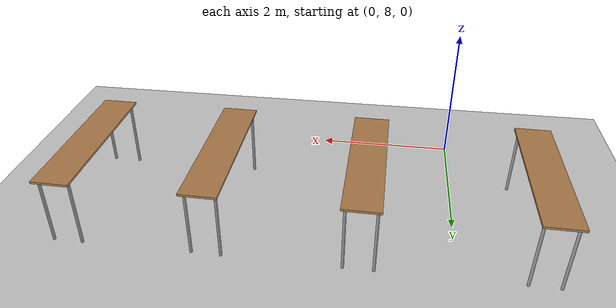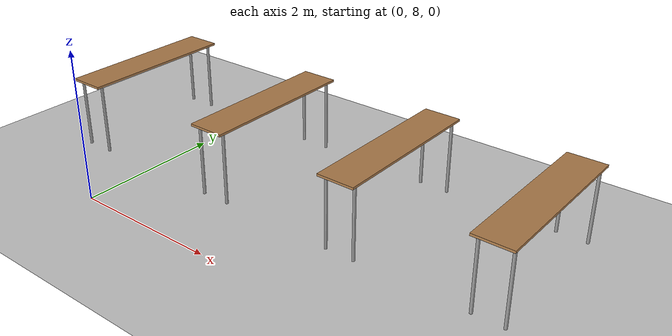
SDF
<sdf version="1.6">
 <world name="default">
  <model name="ground_plane">
   <static>1</static>
   <link name="link">
    <collision name="collision">
     <geometry><plane><normal>0 0 1</normal><size>100 100</size></plane></geometry>
     <surface>
      <contact><collide_bitmask>65535</collide_bitmask></contact>
      <friction><ode><mu>100</mu><mu2>50</mu2></ode></friction>
     </surface>
    </collision>
    <visual name="visual">
     <cast_shadows>0</cast_shadows>
     <geometry><plane><normal>0 0 1</normal><size>100 100</size></plane></geometry>
     <material>
      <script><uri>file://media/materials/scripts/gazebo.material</uri><name>Gazebo/Grey</name></script>
     </material>
    </visual>
   </link>
  </model>
  <model name="mi_og">
   <link name="link_clone_3_clone_clone">
    <pose>-9.35875 16.0769 0 0.003896 0.001539 -1.57863</pose>
    <inertial>
     <mass>1</mass>
     <inertia><ixx>1</ixx><ixy>0</ixy><ixz>0</ixz><iyy>1</iyy><iyz>0</iyz><izz>1</izz></inertia>
    </inertial>
    <visual name="front_right_leg">
     <pose>1 -0.2 0.5 0 -0 0</pose>
     <geometry><cylinder><radius>0.02</radius><length>1</length></cylinder></geometry>
     <material>
      <script><uri>file://media/materials/scripts/gazebo.material</uri><name>Gazebo/Grey</name></script>
      <shader type="vertex"><normal_map>__default__</normal_map></shader>
      <ambient>0.3 0.3 0.3 1</ambient>
      <diffuse>0.7 0.7 0.7 1</diffuse>
      <specular>0.01 0.01 0.01 1</specular>
      <emissive>0 0 0 1</emissive>
     </material>
    </visual>
    <visual name="back_right_leg">
     <pose>-1 -0.2 0.5 0 -0 0</pose>
     <geometry><cylinder><radius>0.02</radius><length>1</length></cylinder></geometry>
     <material>
      <script><uri>file://media/materials/scripts/gazebo.material</uri><name>Gazebo/Grey</name></script>
      <shader type="vertex"><normal_map>__default__</normal_map></shader>
      <ambient>0.3 0.3 0.3 1</ambient>
      <diffuse>0.7 0.7 0.7 1</diffuse>
      <specular>0.01 0.01 0.01 1</specular>
      <emissive>0 0 0 1</emissive>
     </material>
    </visual>
    <visual name="front_left_leg">
     <pose>1 0.2 0.5 0 -0 0</pose>
     <geometry><cylinder><radius>0.02</radius><length>1</length></cylinder></geometry>
     <material>
      <script><uri>file://media/materials/scripts/gazebo.material</uri><name>Gazebo/Grey</name></script>
      <shader type="vertex"><normal_map>__default__</normal_map></shader>
      <ambient>0.3 0.3 0.3 1</ambient>
      <diffuse>0.7 0.7 0.7 1</diffuse>
      <specular>0.01 0.01 0.01 1</specular>
      <emissive>0 0 0 1</emissive>
     </material>
    </visual>
    <visual name="back_left_leg">
     <pose>-1 0.2 0.5 0 -0 0</pose>
     <geometry><cylinder><radius>0.02</radius><length>1</length></cylinder></geometry>
     <material>
      <script><uri>file://media/materials/scripts/gazebo.material</uri><name>Gazebo/Grey</name></script>
      <shader type="vertex"><normal_map>__default__</normal_map></shader>
      <ambient>0.3 0.3 0.3 1</ambient>
      <diffuse>0.7 0.7 0.7 1</diffuse>
      <specular>0.01 0.01 0.01 1</specular>
      <emissive>0 0 0 1</emissive>
     </material>
    </visual>
    <visual name="visual1">
     <pose>0 0 1 0 -0 0</pose>
     <geometry><box><size>2.2 0.5 0.03</size></box></geometry>
     <material>
      <script><uri>file://media/materials/scripts/gazebo.material</uri><name>Gazebo/Wood</name></script>
      <shader type="vertex"><normal_map>__default__</normal_map></shader>
      <ambient>1 1 1 1</ambient>
      <diffuse>1 1 1 1</diffuse>
      <specular>0.2 0.2 0.2 1</specular>
      <emissive>0 0 0 1</emissive>
     </material>
    </visual>
    <collision name="surface">
     <pose>0 0 1 0 -0 0</pose>
     <geometry><box><size>2.2 0.5 0.03</size></box></geometry>
     <surface>
      <friction>
       <ode><mu>1</mu><mu2>1</mu2><fdir1>0 0 0</fdir1><slip1>0</slip1><slip2>0</slip2></ode>
       <torsional>
        <coefficient>1</coefficient>
        <patch_radius>0</patch_radius>
        <surface_radius>0</surface_radius>
        <use_patch_radius>1</use_patch_radius>
        <ode><slip>0</slip></ode>
       </torsional>
      </friction>
      <bounce><restitution_coefficient>0</restitution_coefficient><threshold>1e+06</threshold></bounce>
      <contact>
       <collide_without_contact>0</collide_without_contact>
       <collide_without_contact_bitmask>1</collide_without_contact_bitmask>
       <collide_bitmask>1</collide_bitmask>
       <ode>
        <soft_cfm>0</soft_cfm>
        <soft_erp>0.2</soft_erp>
        <kp>1e+13</kp>
        <kd>1</kd>
        <max_vel>0.01</max_vel>
        <min_depth>0</min_depth>
       </ode>
       <bullet>
        <split_impulse>1</split_impulse>
        <split_impulse_penetration_threshold>-0.01</split_impulse_penetration_threshold>
        <soft_cfm>0</soft_cfm>
        <soft_erp>0.2</soft_erp>
        <kp>1e+13</kp>
        <kd>1</kd>
       </bullet>
      </contact>
     </surface>
    </collision>
    <collision name="front_left_leg_0">
     <pose>1 0.2 0.5 0 -0 0</pose>
     <geometry><cylinder><radius>0.02</radius><length>1</length></cylinder></geometry>
     <surface>
      <friction>
       <ode><mu>1</mu><mu2>1</mu2><fdir1>0 0 0</fdir1><slip1>0</slip1><slip2>0</slip2></ode>
       <torsional>
        <coefficient>1</coefficient>
        <patch_radius>0</patch_radius>
        <surface_radius>0</surface_radius>
        <use_patch_radius>1</use_patch_radius>
        <ode><slip>0</slip></ode>
       </torsional>
      </friction>
      <bounce><restitution_coefficient>0</restitution_coefficient><threshold>1e+06</threshold></bounce>
      <contact>
       <collide_without_contact>0</collide_without_contact>
       <collide_without_contact_bitmask>1</collide_without_contact_bitmask>
       <collide_bitmask>1</collide_bitmask>
       <ode>
        <soft_cfm>0</soft_cfm>
        <soft_erp>0.2</soft_erp>
        <kp>1e+13</kp>
        <kd>1</kd>
        <max_vel>0.01</max_vel>
        <min_depth>0</min_depth>
       </ode>
       <bullet>
        <split_impulse>1</split_impulse>
        <split_impulse_penetration_threshold>-0.01</split_impulse_penetration_threshold>
        <soft_cfm>0</soft_cfm>
        <soft_erp>0.2</soft_erp>
        <kp>1e+13</kp>
        <kd>1</kd>
       </bullet>
      </contact>
     </surface>
    </collision>
    <collision name="back_right_leg_0">
     <pose>-1 -0.2 0.5 0 -0 0</pose>
     <geometry><cylinder><radius>0.02</radius><length>1</length></cylinder></geometry>
     <surface>
      <friction>
       <ode><mu>1</mu><mu2>1</mu2><fdir1>0 0 0</fdir1><slip1>0</slip1><slip2>0</slip2></ode>
       <torsional>
        <coefficient>1</coefficient>
        <patch_radius>0</patch_radius>
        <surface_radius>0</surface_radius>
        <use_patch_radius>1</use_patch_radius>
        <ode><slip>0</slip></ode>
       </torsional>
      </friction>
      <bounce><restitution_coefficient>0</restitution_coefficient><threshold>1e+06</threshold></bounce>
      <contact>
       <collide_without_contact>0</collide_without_contact>
       <collide_without_contact_bitmask>1</collide_without_contact_bitmask>
       <collide_bitmask>1</collide_bitmask>
       <ode>
        <soft_cfm>0</soft_cfm>
        <soft_erp>0.2</soft_erp>
        <kp>1e+13</kp>
        <kd>1</kd>
        <max_vel>0.01</max_vel>
        <min_depth>0</min_depth>
       </ode>
       <bullet>
        <split_impulse>1</split_impulse>
        <split_impulse_penetration_threshold>-0.01</split_impulse_penetration_threshold>
        <soft_cfm>0</soft_cfm>
        <soft_erp>0.2</soft_erp>
        <kp>1e+13</kp>
        <kd>1</kd>
       </bullet>
      </contact>
     </surface>
    </collision>
    <collision name="back_left_leg_0">
     <pose>-1 0.2 0.5 0 -0 0</pose>
     <geometry><cylinder><radius>0.02</radius><length>1</length></cylinder></geometry>
     <surface>
      <friction>
       <ode><mu>1</mu><mu2>1</mu2><fdir1>0 0 0</fdir1><slip1>0</slip1><slip2>0</slip2></ode>
       <torsional>
        <coefficient>1</coefficient>
        <patch_radius>0</patch_radius>
        <surface_radius>0</surface_radius>
        <use_patch_radius>1</use_patch_radius>
        <ode><slip>0</slip></ode>
       </torsional>
      </friction>
      <bounce><restitution_coefficient>0</restitution_coefficient><threshold>1e+06</threshold></bounce>
      <contact>
       <collide_without_contact>0</collide_without_contact>
       <collide_without_contact_bitmask>1</collide_without_contact_bitmask>
       <collide_bitmask>1</collide_bitmask>
       <ode>
        <soft_cfm>0</soft_cfm>
        <soft_erp>0.2</soft_erp>
        <kp>1e+13</kp>
        <kd>1</kd>
        <max_vel>0.01</max_vel>
        <min_depth>0</min_depth>
       </ode>
       <bullet>
        <split_impulse>1</split_impulse>
        <split_impulse_penetration_threshold>-0.01</split_impulse_penetration_threshold>
        <soft_cfm>0</soft_cfm>
        <soft_erp>0.2</soft_erp>
        <kp>1e+13</kp>
        <kd>1</kd>
       </bullet>
      </contact>
     </surface>
    </collision>
    <collision name="front_right_leg_0">
     <pose>1 -0.2 0.5 0 -0 0</pose>
     <geometry><cylinder><radius>0.02</radius><length>1</length></cylinder></geometry>
     <surface>
      <friction>
       <ode><mu>1</mu><mu2>1</mu2><fdir1>0 0 0</fdir1><slip1>0</slip1><slip2>0</slip2></ode>
       <torsional>
        <coefficient>1</coefficient>
        <patch_radius>0</patch_radius>
        <surface_radius>0</surface_radius>
        <use_patch_radius>1</use_patch_radius>
        <ode><slip>0</slip></ode>
       </torsional>
      </friction>
      <bounce><restitution_coefficient>0</restitution_coefficient><threshold>1e+06</threshold></bounce>
      <contact>
       <collide_without_contact>0</collide_without_contact>
       <collide_without_contact_bitmask>1</collide_without_contact_bitmask>
       <collide_bitmask>1</collide_bitmask>
       <ode>
        <soft_cfm>0</soft_cfm>
        <soft_erp>0.2</soft_erp>
        <kp>1e+13</kp>
        <kd>1</kd>
        <max_vel>0.01</max_vel>
        <min_depth>0</min_depth>
       </ode>
       <bullet>
        <split_impulse>1</split_impulse>
        <split_impulse_penetration_threshold>-0.01</split_impulse_penetration_threshold>
        <soft_cfm>0</soft_cfm>
        <soft_erp>0.2</soft_erp>
        <kp>1e+13</kp>
        <kd>1</kd>
       </bullet>
      </contact>
     </surface>
    </collision>
   </link>
   <link name="link_clone_3_clone_clone_clone">
    <pose>-7.06432 16.084 0 0.003896 0.001539 -1.57863</pose>
    <inertial>
     <mass>1</mass>
     <inertia><ixx>1</ixx><ixy>0</ixy><ixz>0</ixz><iyy>1</iyy><iyz>0</iyz><izz>1</izz></inertia>
    </inertial>
    <visual name="front_right_leg">
     <pose>1 -0.2 0.5 0 -0 0</pose>
     <geometry><cylinder><radius>0.02</radius><length>1</length></cylinder></geometry>
     <material>
      <script><uri>file://media/materials/scripts/gazebo.material</uri><name>Gazebo/Grey</name></script>
      <shader type="vertex"><normal_map>__default__</normal_map></shader>
      <ambient>0.3 0.3 0.3 1</ambient>
      <diffuse>0.7 0.7 0.7 1</diffuse>
      <specular>0.01 0.01 0.01 1</specular>
      <emissive>0 0 0 1</emissive>
     </material>
    </visual>
    <visual name="back_right_leg">
     <pose>-1 -0.2 0.5 0 -0 0</pose>
     <geometry><cylinder><radius>0.02</radius><length>1</length></cylinder></geometry>
     <material>
      <script><uri>file://media/materials/scripts/gazebo.material</uri><name>Gazebo/Grey</name></script>
      <shader type="vertex"><normal_map>__default__</normal_map></shader>
      <ambient>0.3 0.3 0.3 1</ambient>
      <diffuse>0.7 0.7 0.7 1</diffuse>
      <specular>0.01 0.01 0.01 1</specular>
      <emissive>0 0 0 1</emissive>
     </material>
    </visual>
    <visual name="front_left_leg">
     <pose>1 0.2 0.5 0 -0 0</pose>
     <geometry><cylinder><radius>0.02</radius><length>1</length></cylinder></geometry>
     <material>
      <script><uri>file://media/materials/scripts/gazebo.material</uri><name>Gazebo/Grey</name></script>
      <shader type="vertex"><normal_map>__default__</normal_map></shader>
      <ambient>0.3 0.3 0.3 1</ambient>
      <diffuse>0.7 0.7 0.7 1</diffuse>
      <specular>0.01 0.01 0.01 1</specular>
      <emissive>0 0 0 1</emissive>
     </material>
    </visual>
    <visual name="back_left_leg">
     <pose>-1 0.2 0.5 0 -0 0</pose>
     <geometry><cylinder><radius>0.02</radius><length>1</length></cylinder></geometry>
     <material>
      <script><uri>file://media/materials/scripts/gazebo.material</uri><name>Gazebo/Grey</name></script>
      <shader type="vertex"><normal_map>__default__</normal_map></shader>
      <ambient>0.3 0.3 0.3 1</ambient>
      <diffuse>0.7 0.7 0.7 1</diffuse>
      <specular>0.01 0.01 0.01 1</specular>
      <emissive>0 0 0 1</emissive>
     </material>
    </visual>
    <visual name="visual1">
     <pose>0 0 1 0 -0 0</pose>
     <geometry><box><size>2.2 0.5 0.03</size></box></geometry>
     <material>
      <script><uri>file://media/materials/scripts/gazebo.material</uri><name>Gazebo/Wood</name></script>
      <shader type="vertex"><normal_map>__default__</normal_map></shader>
      <ambient>1 1 1 1</ambient>
      <diffuse>1 1 1 1</diffuse>
      <specular>0.2 0.2 0.2 1</specular>
      <emissive>0 0 0 1</emissive>
     </material>
    </visual>
    <collision name="surface">
     <pose>0 0 1 0 -0 0</pose>
     <geometry><box><size>2.2 0.5 0.03</size></box></geometry>
     <surface>
      <friction>
       <ode><mu>1</mu><mu2>1</mu2><fdir1>0 0 0</fdir1><slip1>0</slip1><slip2>0</slip2></ode>
       <torsional>
        <coefficient>1</coefficient>
        <patch_radius>0</patch_radius>
        <surface_radius>0</surface_radius>
        <use_patch_radius>1</use_patch_radius>
        <ode><slip>0</slip></ode>
       </torsional>
      </friction>
      <bounce><restitution_coefficient>0</restitution_coefficient><threshold>1e+06</threshold></bounce>
      <contact>
       <collide_without_contact>0</collide_without_contact>
       <collide_without_contact_bitmask>1</collide_without_contact_bitmask>
       <collide_bitmask>1</collide_bitmask>
       <ode>
        <soft_cfm>0</soft_cfm>
        <soft_erp>0.2</soft_erp>
        <kp>1e+13</kp>
        <kd>1</kd>
        <max_vel>0.01</max_vel>
        <min_depth>0</min_depth>
       </ode>
       <bullet>
        <split_impulse>1</split_impulse>
        <split_impulse_penetration_threshold>-0.01</split_impulse_penetration_threshold>
        <soft_cfm>0</soft_cfm>
        <soft_erp>0.2</soft_erp>
        <kp>1e+13</kp>
        <kd>1</kd>
       </bullet>
      </contact>
     </surface>
    </collision>
    <collision name="front_left_leg_0">
     <pose>1 0.2 0.5 0 -0 0</pose>
     <geometry><cylinder><radius>0.02</radius><length>1</length></cylinder></geometry>
     <surface>
      <friction>
       <ode><mu>1</mu><mu2>1</mu2><fdir1>0 0 0</fdir1><slip1>0</slip1><slip2>0</slip2></ode>
       <torsional>
        <coefficient>1</coefficient>
        <patch_radius>0</patch_radius>
        <surface_radius>0</surface_radius>
        <use_patch_radius>1</use_patch_radius>
        <ode><slip>0</slip></ode>
       </torsional>
      </friction>
      <bounce><restitution_coefficient>0</restitution_coefficient><threshold>1e+06</threshold></bounce>
      <contact>
       <collide_without_contact>0</collide_without_contact>
       <collide_without_contact_bitmask>1</collide_without_contact_bitmask>
       <collide_bitmask>1</collide_bitmask>
       <ode>
        <soft_cfm>0</soft_cfm>
        <soft_erp>0.2</soft_erp>
        <kp>1e+13</kp>
        <kd>1</kd>
        <max_vel>0.01</max_vel>
        <min_depth>0</min_depth>
       </ode>
       <bullet>
        <split_impulse>1</split_impulse>
        <split_impulse_penetration_threshold>-0.01</split_impulse_penetration_threshold>
        <soft_cfm>0</soft_cfm>
        <soft_erp>0.2</soft_erp>
        <kp>1e+13</kp>
        <kd>1</kd>
       </bullet>
      </contact>
     </surface>
    </collision>
    <collision name="back_right_leg_0">
     <pose>-1 -0.2 0.5 0 -0 0</pose>
     <geometry><cylinder><radius>0.02</radius><length>1</length></cylinder></geometry>
     <surface>
      <friction>
       <ode><mu>1</mu><mu2>1</mu2><fdir1>0 0 0</fdir1><slip1>0</slip1><slip2>0</slip2></ode>
       <torsional>
        <coefficient>1</coefficient>
        <patch_radius>0</patch_radius>
        <surface_radius>0</surface_radius>
        <use_patch_radius>1</use_patch_radius>
        <ode><slip>0</slip></ode>
       </torsional>
      </friction>
      <bounce><restitution_coefficient>0</restitution_coefficient><threshold>1e+06</threshold></bounce>
      <contact>
       <collide_without_contact>0</collide_without_contact>
       <collide_without_contact_bitmask>1</collide_without_contact_bitmask>
       <collide_bitmask>1</collide_bitmask>
       <ode>
        <soft_cfm>0</soft_cfm>
        <soft_erp>0.2</soft_erp>
        <kp>1e+13</kp>
        <kd>1</kd>
        <max_vel>0.01</max_vel>
        <min_depth>0</min_depth>
       </ode>
       <bullet>
        <split_impulse>1</split_impulse>
        <split_impulse_penetration_threshold>-0.01</split_impulse_penetration_threshold>
        <soft_cfm>0</soft_cfm>
        <soft_erp>0.2</soft_erp>
        <kp>1e+13</kp>
        <kd>1</kd>
       </bullet>
      </contact>
     </surface>
    </collision>
    <collision name="back_left_leg_0">
     <pose>-1 0.2 0.5 0 -0 0</pose>
     <geometry><cylinder><radius>0.02</radius><length>1</length></cylinder></geometry>
     <surface>
      <friction>
       <ode><mu>1</mu><mu2>1</mu2><fdir1>0 0 0</fdir1><slip1>0</slip1><slip2>0</slip2></ode>
       <torsional>
        <coefficient>1</coefficient>
        <patch_radius>0</patch_radius>
        <surface_radius>0</surface_radius>
        <use_patch_radius>1</use_patch_radius>
        <ode><slip>0</slip></ode>
       </torsional>
      </friction>
      <bounce><restitution_coefficient>0</restitution_coefficient><threshold>1e+06</threshold></bounce>
      <contact>
       <collide_without_contact>0</collide_without_contact>
       <collide_without_contact_bitmask>1</collide_without_contact_bitmask>
       <collide_bitmask>1</collide_bitmask>
       <ode>
        <soft_cfm>0</soft_cfm>
        <soft_erp>0.2</soft_erp>
        <kp>1e+13</kp>
        <kd>1</kd>
        <max_vel>0.01</max_vel>
        <min_depth>0</min_depth>
       </ode>
       <bullet>
        <split_impulse>1</split_impulse>
        <split_impulse_penetration_threshold>-0.01</split_impulse_penetration_threshold>
        <soft_cfm>0</soft_cfm>
        <soft_erp>0.2</soft_erp>
        <kp>1e+13</kp>
        <kd>1</kd>
       </bullet>
      </contact>
     </surface>
    </collision>
    <collision name="front_right_leg_0">
     <pose>1 -0.2 0.5 0 -0 0</pose>
     <geometry><cylinder><radius>0.02</radius><length>1</length></cylinder></geometry>
     <surface>
      <friction>
       <ode><mu>1</mu><mu2>1</mu2><fdir1>0 0 0</fdir1><slip1>0</slip1><slip2>0</slip2></ode>
       <torsional>
        <coefficient>1</coefficient>
        <patch_radius>0</patch_radius>
        <surface_radius>0</surface_radius>
        <use_patch_radius>1</use_patch_radius>
        <ode><slip>0</slip></ode>
       </torsional>
      </friction>
      <bounce><restitution_coefficient>0</restitution_coefficient><threshold>1e+06</threshold></bounce>
      <contact>
       <collide_without_contact>0</collide_without_contact>
       <collide_without_contact_bitmask>1</collide_without_contact_bitmask>
       <collide_bitmask>1</collide_bitmask>
       <ode>
        <soft_cfm>0</soft_cfm>
        <soft_erp>0.2</soft_erp>
        <kp>1e+13</kp>
        <kd>1</kd>
        <max_vel>0.01</max_vel>
        <min_depth>0</min_depth>
       </ode>
       <bullet>
        <split_impulse>1</split_impulse>
        <split_impulse_penetration_threshold>-0.01</split_impulse_penetration_threshold>
        <soft_cfm>0</soft_cfm>
        <soft_erp>0.2</soft_erp>
        <kp>1e+13</kp>
        <kd>1</kd>
       </bullet>
      </contact>
     </surface>
    </collision>
   </link>
   <link name="link_clone_3_clone_clone_clone_0">
    <pose>-5.07057 16.0752 0 0.003896 0.001539 -1.57863</pose>
    <inertial>
     <mass>1</mass>
     <inertia><ixx>1</ixx><ixy>0</ixy><ixz>0</ixz><iyy>1</iyy><iyz>0</iyz><izz>1</izz></inertia>
    </inertial>
    <visual name="front_right_leg">
     <pose>1 -0.2 0.5 0 -0 0</pose>
     <geometry><cylinder><radius>0.02</radius><length>1</length></cylinder></geometry>
     <material>
      <script><uri>file://media/materials/scripts/gazebo.material</uri><name>Gazebo/Grey</name></script>
      <shader type="vertex"><normal_map>__default__</normal_map></shader>
      <ambient>0.3 0.3 0.3 1</ambient>
      <diffuse>0.7 0.7 0.7 1</diffuse>
      <specular>0.01 0.01 0.01 1</specular>
      <emissive>0 0 0 1</emissive>
     </material>
    </visual>
    <visual name="back_left_leg">
     <pose>-1 0.2 0.5 0 -0 0</pose>
     <geometry><cylinder><radius>0.02</radius><length>1</length></cylinder></geometry>
     <material>
      <script><uri>file://media/materials/scripts/gazebo.material</uri><name>Gazebo/Grey</name></script>
      <shader type="vertex"><normal_map>__default__</normal_map></shader>
      <ambient>0.3 0.3 0.3 1</ambient>
      <diffuse>0.7 0.7 0.7 1</diffuse>
      <specular>0.01 0.01 0.01 1</specular>
      <emissive>0 0 0 1</emissive>
     </material>
    </visual>
    <visual name="visual1">
     <pose>0 0 1 0 -0 0</pose>
     <geometry><box><size>2.2 0.5 0.03</size></box></geometry>
     <material>
      <script><uri>file://media/materials/scripts/gazebo.material</uri><name>Gazebo/Wood</name></script>
      <shader type="vertex"><normal_map>__default__</normal_map></shader>
      <ambient>1 1 1 1</ambient>
      <diffuse>1 1 1 1</diffuse>
      <specular>0.2 0.2 0.2 1</specular>
      <emissive>0 0 0 1</emissive>
     </material>
    </visual>
    <visual name="back_right_leg">
     <pose>-1 -0.2 0.5 0 -0 0</pose>
     <geometry><cylinder><radius>0.02</radius><length>1</length></cylinder></geometry>
     <material>
      <script><uri>file://media/materials/scripts/gazebo.material</uri><name>Gazebo/Grey</name></script>
      <shader type="vertex"><normal_map>__default__</normal_map></shader>
      <ambient>0.3 0.3 0.3 1</ambient>
      <diffuse>0.7 0.7 0.7 1</diffuse>
      <specular>0.01 0.01 0.01 1</specular>
      <emissive>0 0 0 1</emissive>
     </material>
    </visual>
    <visual name="front_left_leg">
     <pose>1 0.2 0.5 0 -0 0</pose>
     <geometry><cylinder><radius>0.02</radius><length>1</length></cylinder></geometry>
     <material>
      <script><uri>file://media/materials/scripts/gazebo.material</uri><name>Gazebo/Grey</name></script>
      <shader type="vertex"><normal_map>__default__</normal_map></shader>
      <ambient>0.3 0.3 0.3 1</ambient>
      <diffuse>0.7 0.7 0.7 1</diffuse>
      <specular>0.01 0.01 0.01 1</specular>
      <emissive>0 0 0 1</emissive>
     </material>
    </visual>
    <collision name="front_right_leg_0">
     <pose>1 -0.2 0.5 0 -0 0</pose>
     <geometry><cylinder><radius>0.02</radius><length>1</length></cylinder></geometry>
     <surface>
      <friction>
       <ode><mu>1</mu><mu2>1</mu2><fdir1>0 0 0</fdir1><slip1>0</slip1><slip2>0</slip2></ode>
       <torsional>
        <coefficient>1</coefficient>
        <patch_radius>0</patch_radius>
        <surface_radius>0</surface_radius>
        <use_patch_radius>1</use_patch_radius>
        <ode><slip>0</slip></ode>
       </torsional>
      </friction>
      <bounce><restitution_coefficient>0</restitution_coefficient><threshold>1e+06</threshold></bounce>
      <contact>
       <collide_without_contact>0</collide_without_contact>
       <collide_without_contact_bitmask>1</collide_without_contact_bitmask>
       <collide_bitmask>1</collide_bitmask>
       <ode>
        <soft_cfm>0</soft_cfm>
        <soft_erp>0.2</soft_erp>
        <kp>1e+13</kp>
        <kd>1</kd>
        <max_vel>0.01</max_vel>
        <min_depth>0</min_depth>
       </ode>
       <bullet>
        <split_impulse>1</split_impulse>
        <split_impulse_penetration_threshold>-0.01</split_impulse_penetration_threshold>
        <soft_cfm>0</soft_cfm>
        <soft_erp>0.2</soft_erp>
        <kp>1e+13</kp>
        <kd>1</kd>
       </bullet>
      </contact>
     </surface>
    </collision>
    <collision name="surface">
     <pose>0 0 1 0 -0 0</pose>
     <geometry><box><size>2.2 0.5 0.03</size></box></geometry>
     <surface>
      <friction>
       <ode><mu>1</mu><mu2>1</mu2><fdir1>0 0 0</fdir1><slip1>0</slip1><slip2>0</slip2></ode>
       <torsional>
        <coefficient>1</coefficient>
        <patch_radius>0</patch_radius>
        <surface_radius>0</surface_radius>
        <use_patch_radius>1</use_patch_radius>
        <ode><slip>0</slip></ode>
       </torsional>
      </friction>
      <bounce><restitution_coefficient>0</restitution_coefficient><threshold>1e+06</threshold></bounce>
      <contact>
       <collide_without_contact>0</collide_without_contact>
       <collide_without_contact_bitmask>1</collide_without_contact_bitmask>
       <collide_bitmask>1</collide_bitmask>
       <ode>
        <soft_cfm>0</soft_cfm>
        <soft_erp>0.2</soft_erp>
        <kp>1e+13</kp>
        <kd>1</kd>
        <max_vel>0.01</max_vel>
        <min_depth>0</min_depth>
       </ode>
       <bullet>
        <split_impulse>1</split_impulse>
        <split_impulse_penetration_threshold>-0.01</split_impulse_penetration_threshold>
        <soft_cfm>0</soft_cfm>
        <soft_erp>0.2</soft_erp>
        <kp>1e+13</kp>
        <kd>1</kd>
       </bullet>
      </contact>
     </surface>
    </collision>
    <collision name="front_left_leg_0">
     <pose>1 0.2 0.5 0 -0 0</pose>
     <geometry><cylinder><radius>0.02</radius><length>1</length></cylinder></geometry>
     <surface>
      <friction>
       <ode><mu>1</mu><mu2>1</mu2><fdir1>0 0 0</fdir1><slip1>0</slip1><slip2>0</slip2></ode>
       <torsional>
        <coefficient>1</coefficient>
        <patch_radius>0</patch_radius>
        <surface_radius>0</surface_radius>
        <use_patch_radius>1</use_patch_radius>
        <ode><slip>0</slip></ode>
       </torsional>
      </friction>
      <bounce><restitution_coefficient>0</restitution_coefficient><threshold>1e+06</threshold></bounce>
      <contact>
       <collide_without_contact>0</collide_without_contact>
       <collide_without_contact_bitmask>1</collide_without_contact_bitmask>
       <collide_bitmask>1</collide_bitmask>
       <ode>
        <soft_cfm>0</soft_cfm>
        <soft_erp>0.2</soft_erp>
        <kp>1e+13</kp>
        <kd>1</kd>
        <max_vel>0.01</max_vel>
        <min_depth>0</min_depth>
       </ode>
       <bullet>
        <split_impulse>1</split_impulse>
        <split_impulse_penetration_threshold>-0.01</split_impulse_penetration_threshold>
        <soft_cfm>0</soft_cfm>
        <soft_erp>0.2</soft_erp>
        <kp>1e+13</kp>
        <kd>1</kd>
       </bullet>
      </contact>
     </surface>
    </collision>
    <collision name="back_right_leg_0">
     <pose>-1 -0.2 0.5 0 -0 0</pose>
     <geometry><cylinder><radius>0.02</radius><length>1</length></cylinder></geometry>
     <surface>
      <friction>
       <ode><mu>1</mu><mu2>1</mu2><fdir1>0 0 0</fdir1><slip1>0</slip1><slip2>0</slip2></ode>
       <torsional>
        <coefficient>1</coefficient>
        <patch_radius>0</patch_radius>
        <surface_radius>0</surface_radius>
        <use_patch_radius>1</use_patch_radius>
        <ode><slip>0</slip></ode>
       </torsional>
      </friction>
      <bounce><restitution_coefficient>0</restitution_coefficient><threshold>1e+06</threshold></bounce>
      <contact>
       <collide_without_contact>0</collide_without_contact>
       <collide_without_contact_bitmask>1</collide_without_contact_bitmask>
       <collide_bitmask>1</collide_bitmask>
       <ode>
        <soft_cfm>0</soft_cfm>
        <soft_erp>0.2</soft_erp>
        <kp>1e+13</kp>
        <kd>1</kd>
        <max_vel>0.01</max_vel>
        <min_depth>0</min_depth>
       </ode>
       <bullet>
        <split_impulse>1</split_impulse>
        <split_impulse_penetration_threshold>-0.01</split_impulse_penetration_threshold>
        <soft_cfm>0</soft_cfm>
        <soft_erp>0.2</soft_erp>
        <kp>1e+13</kp>
        <kd>1</kd>
       </bullet>
      </contact>
     </surface>
    </collision>
    <collision name="back_left_leg_0">
     <pose>-1 0.2 0.5 0 -0 0</pose>
     <geometry><cylinder><radius>0.02</radius><length>1</length></cylinder></geometry>
     <surface>
      <friction>
       <ode><mu>1</mu><mu2>1</mu2><fdir1>0 0 0</fdir1><slip1>0</slip1><slip2>0</slip2></ode>
       <torsional>
        <coefficient>1</coefficient>
        <patch_radius>0</patch_radius>
        <surface_radius>0</surface_radius>
        <use_patch_radius>1</use_patch_radius>
        <ode><slip>0</slip></ode>
       </torsional>
      </friction>
      <bounce><restitution_coefficient>0</restitution_coefficient><threshold>1e+06</threshold></bounce>
      <contact>
       <collide_without_contact>0</collide_without_contact>
       <collide_without_contact_bitmask>1</collide_without_contact_bitmask>
       <collide_bitmask>1</collide_bitmask>
       <ode>
        <soft_cfm>0</soft_cfm>
        <soft_erp>0.2</soft_erp>
        <kp>1e+13</kp>
        <kd>1</kd>
        <max_vel>0.01</max_vel>
        <min_depth>0</min_depth>
       </ode>
       <bullet>
        <split_impulse>1</split_impulse>
        <split_impulse_penetration_threshold>-0.01</split_impulse_penetration_threshold>
        <soft_cfm>0</soft_cfm>
        <soft_erp>0.2</soft_erp>
        <kp>1e+13</kp>
        <kd>1</kd>
       </bullet>
      </contact>
     </surface>
    </collision>
   </link>
   <link name="link_clone_3_clone_clone_clone_1">
    <pose>-3.16581 16.0855 0 0.003896 0.001539 -1.57863</pose>
    <inertial>
     <mass>1</mass>
     <inertia><ixx>1</ixx><ixy>0</ixy><ixz>0</ixz><iyy>1</iyy><iyz>0</iyz><izz>1</izz></inertia>
    </inertial>
    <visual name="front_right_leg">
     <pose>1 -0.2 0.5 0 -0 0</pose>
     <geometry><cylinder><radius>0.02</radius><length>1</length></cylinder></geometry>
     <material>
      <script><uri>file://media/materials/scripts/gazebo.material</uri><name>Gazebo/Grey</name></script>
      <shader type="vertex"><normal_map>__default__</normal_map></shader>
      <ambient>0.3 0.3 0.3 1</ambient>
      <diffuse>0.7 0.7 0.7 1</diffuse>
      <specular>0.01 0.01 0.01 1</specular>
      <emissive>0 0 0 1</emissive>
     </material>
    </visual>
    <visual name="back_right_leg">
     <pose>-1 -0.2 0.5 0 -0 0</pose>
     <geometry><cylinder><radius>0.02</radius><length>1</length></cylinder></geometry>
     <material>
      <script><uri>file://media/materials/scripts/gazebo.material</uri><name>Gazebo/Grey</name></script>
      <shader type="vertex"><normal_map>__default__</normal_map></shader>
      <ambient>0.3 0.3 0.3 1</ambient>
      <diffuse>0.7 0.7 0.7 1</diffuse>
      <specular>0.01 0.01 0.01 1</specular>
      <emissive>0 0 0 1</emissive>
     </material>
    </visual>
    <visual name="front_left_leg">
     <pose>1 0.2 0.5 0 -0 0</pose>
     <geometry><cylinder><radius>0.02</radius><length>1</length></cylinder></geometry>
     <material>
      <script><uri>file://media/materials/scripts/gazebo.material</uri><name>Gazebo/Grey</name></script>
      <shader type="vertex"><normal_map>__default__</normal_map></shader>
      <ambient>0.3 0.3 0.3 1</ambient>
      <diffuse>0.7 0.7 0.7 1</diffuse>
      <specular>0.01 0.01 0.01 1</specular>
      <emissive>0 0 0 1</emissive>
     </material>
    </visual>
    <visual name="back_left_leg">
     <pose>-1 0.2 0.5 0 -0 0</pose>
     <geometry><cylinder><radius>0.02</radius><length>1</length></cylinder></geometry>
     <material>
      <script><uri>file://media/materials/scripts/gazebo.material</uri><name>Gazebo/Grey</name></script>
      <shader type="vertex"><normal_map>__default__</normal_map></shader>
      <ambient>0.3 0.3 0.3 1</ambient>
      <diffuse>0.7 0.7 0.7 1</diffuse>
      <specular>0.01 0.01 0.01 1</specular>
      <emissive>0 0 0 1</emissive>
     </material>
    </visual>
    <visual name="visual1">
     <pose>0 0 1 0 -0 0</pose>
     <geometry><box><size>2.2 0.5 0.03</size></box></geometry>
     <material>
      <script><uri>file://media/materials/scripts/gazebo.material</uri><name>Gazebo/Wood</name></script>
      <shader type="vertex"><normal_map>__default__</normal_map></shader>
      <ambient>1 1 1 1</ambient>
      <diffuse>1 1 1 1</diffuse>
      <specular>0.2 0.2 0.2 1</specular>
      <emissive>0 0 0 1</emissive>
     </material>
    </visual>
    <collision name="surface">
     <pose>0 0 1 0 -0 0</pose>
     <geometry><box><size>2.2 0.5 0.03</size></box></geometry>
     <surface>
      <friction>
       <ode><mu>1</mu><mu2>1</mu2><fdir1>0 0 0</fdir1><slip1>0</slip1><slip2>0</slip2></ode>
       <torsional>
        <coefficient>1</coefficient>
        <patch_radius>0</patch_radius>
        <surface_radius>0</surface_radius>
        <use_patch_radius>1</use_patch_radius>
        <ode><slip>0</slip></ode>
       </torsional>
      </friction>
      <bounce><restitution_coefficient>0</restitution_coefficient><threshold>1e+06</threshold></bounce>
      <contact>
       <collide_without_contact>0</collide_without_contact>
       <collide_without_contact_bitmask>1</collide_without_contact_bitmask>
       <collide_bitmask>1</collide_bitmask>
       <ode>
        <soft_cfm>0</soft_cfm>
        <soft_erp>0.2</soft_erp>
        <kp>1e+13</kp>
        <kd>1</kd>
        <max_vel>0.01</max_vel>
        <min_depth>0</min_depth>
       </ode>
       <bullet>
        <split_impulse>1</split_impulse>
        <split_impulse_penetration_threshold>-0.01</split_impulse_penetration_threshold>
        <soft_cfm>0</soft_cfm>
        <soft_erp>0.2</soft_erp>
        <kp>1e+13</kp>
        <kd>1</kd>
       </bullet>
      </contact>
     </surface>
    </collision>
    <collision name="front_left_leg_0">
     <pose>1 0.2 0.5 0 -0 0</pose>
     <geometry><cylinder><radius>0.02</radius><length>1</length></cylinder></geometry>
     <surface>
      <friction>
       <ode><mu>1</mu><mu2>1</mu2><fdir1>0 0 0</fdir1><slip1>0</slip1><slip2>0</slip2></ode>
       <torsional>
        <coefficient>1</coefficient>
        <patch_radius>0</patch_radius>
        <surface_radius>0</surface_radius>
        <use_patch_radius>1</use_patch_radius>
        <ode><slip>0</slip></ode>
       </torsional>
      </friction>
      <bounce><restitution_coefficient>0</restitution_coefficient><threshold>1e+06</threshold></bounce>
      <contact>
       <collide_without_contact>0</collide_without_contact>
       <collide_without_contact_bitmask>1</collide_without_contact_bitmask>
       <collide_bitmask>1</collide_bitmask>
       <ode>
        <soft_cfm>0</soft_cfm>
        <soft_erp>0.2</soft_erp>
        <kp>1e+13</kp>
        <kd>1</kd>
        <max_vel>0.01</max_vel>
        <min_depth>0</min_depth>
       </ode>
       <bullet>
        <split_impulse>1</split_impulse>
        <split_impulse_penetration_threshold>-0.01</split_impulse_penetration_threshold>
        <soft_cfm>0</soft_cfm>
        <soft_erp>0.2</soft_erp>
        <kp>1e+13</kp>
        <kd>1</kd>
       </bullet>
      </contact>
     </surface>
    </collision>
    <collision name="back_right_leg_0">
     <pose>-1 -0.2 0.5 0 -0 0</pose>
     <geometry><cylinder><radius>0.02</radius><length>1</length></cylinder></geometry>
     <surface>
      <friction>
       <ode><mu>1</mu><mu2>1</mu2><fdir1>0 0 0</fdir1><slip1>0</slip1><slip2>0</slip2></ode>
       <torsional>
        <coefficient>1</coefficient>
        <patch_radius>0</patch_radius>
        <surface_radius>0</surface_radius>
        <use_patch_radius>1</use_patch_radius>
        <ode><slip>0</slip></ode>
       </torsional>
      </friction>
      <bounce><restitution_coefficient>0</restitution_coefficient><threshold>1e+06</threshold></bounce>
      <contact>
       <collide_without_contact>0</collide_without_contact>
       <collide_without_contact_bitmask>1</collide_without_contact_bitmask>
       <collide_bitmask>1</collide_bitmask>
       <ode>
        <soft_cfm>0</soft_cfm>
        <soft_erp>0.2</soft_erp>
        <kp>1e+13</kp>
        <kd>1</kd>
        <max_vel>0.01</max_vel>
        <min_depth>0</min_depth>
       </ode>
       <bullet>
        <split_impulse>1</split_impulse>
        <split_impulse_penetration_threshold>-0.01</split_impulse_penetration_threshold>
        <soft_cfm>0</soft_cfm>
        <soft_erp>0.2</soft_erp>
        <kp>1e+13</kp>
        <kd>1</kd>
       </bullet>
      </contact>
     </surface>
    </collision>
    <collision name="back_left_leg_0">
     <pose>-1 0.2 0.5 0 -0 0</pose>
     <geometry><cylinder><radius>0.02</radius><length>1</length></cylinder></geometry>
     <surface>
      <friction>
       <ode><mu>1</mu><mu2>1</mu2><fdir1>0 0 0</fdir1><slip1>0</slip1><slip2>0</slip2></ode>
       <torsional>
        <coefficient>1</coefficient>
        <patch_radius>0</patch_radius>
        <surface_radius>0</surface_radius>
        <use_patch_radius>1</use_patch_radius>
        <ode><slip>0</slip></ode>
       </torsional>
      </friction>
      <bounce><restitution_coefficient>0</restitution_coefficient><threshold>1e+06</threshold></bounce>
      <contact>
       <collide_without_contact>0</collide_without_contact>
       <collide_without_contact_bitmask>1</collide_without_contact_bitmask>
       <collide_bitmask>1</collide_bitmask>
       <ode>
        <soft_cfm>0</soft_cfm>
        <soft_erp>0.2</soft_erp>
        <kp>1e+13</kp>
        <kd>1</kd>
        <max_vel>0.01</max_vel>
        <min_depth>0</min_depth>
       </ode>
       <bullet>
        <split_impulse>1</split_impulse>
        <split_impulse_penetration_threshold>-0.01</split_impulse_penetration_threshold>
        <soft_cfm>0</soft_cfm>
        <soft_erp>0.2</soft_erp>
        <kp>1e+13</kp>
        <kd>1</kd>
       </bullet>
      </contact>
     </surface>
    </collision>
    <collision name="front_right_leg_0">
     <pose>1 -0.2 0.5 0 -0 0</pose>
     <geometry><cylinder><radius>0.02</radius><length>1</length></cylinder></geometry>
     <surface>
      <friction>
       <ode><mu>1</mu><mu2>1</mu2><fdir1>0 0 0</fdir1><slip1>0</slip1><slip2>0</slip2></ode>
       <torsional>
        <coefficient>1</coefficient>
        <patch_radius>0</patch_radius>
        <surface_radius>0</surface_radius>
        <use_patch_radius>1</use_patch_radius>
        <ode><slip>0</slip></ode>
       </torsional>
      </friction>
      <bounce><restitution_coefficient>0</restitution_coefficient><threshold>1e+06</threshold></bounce>
      <contact>
       <collide_without_contact>0</collide_without_contact>
       <collide_without_contact_bitmask>1</collide_without_contact_bitmask>
       <collide_bitmask>1</collide_bitmask>
       <ode>
        <soft_cfm>0</soft_cfm>
        <soft_erp>0.2</soft_erp>
        <kp>1e+13</kp>
        <kd>1</kd>
        <max_vel>0.01</max_vel>
        <min_depth>0</min_depth>
       </ode>
       <bullet>
        <split_impulse>1</split_impulse>
        <split_impulse_penetration_threshold>-0.01</split_impulse_penetration_threshold>
        <soft_cfm>0</soft_cfm>
        <soft_erp>0.2</soft_erp>
        <kp>1e+13</kp>
        <kd>1</kd>
       </bullet>
      </contact>
     </surface>
    </collision>
   </link>
   <static>1</static>
   <pose>8.29575 -6.07547 0 0 -0 0</pose>
  </model>
 </world>
</sdf>
